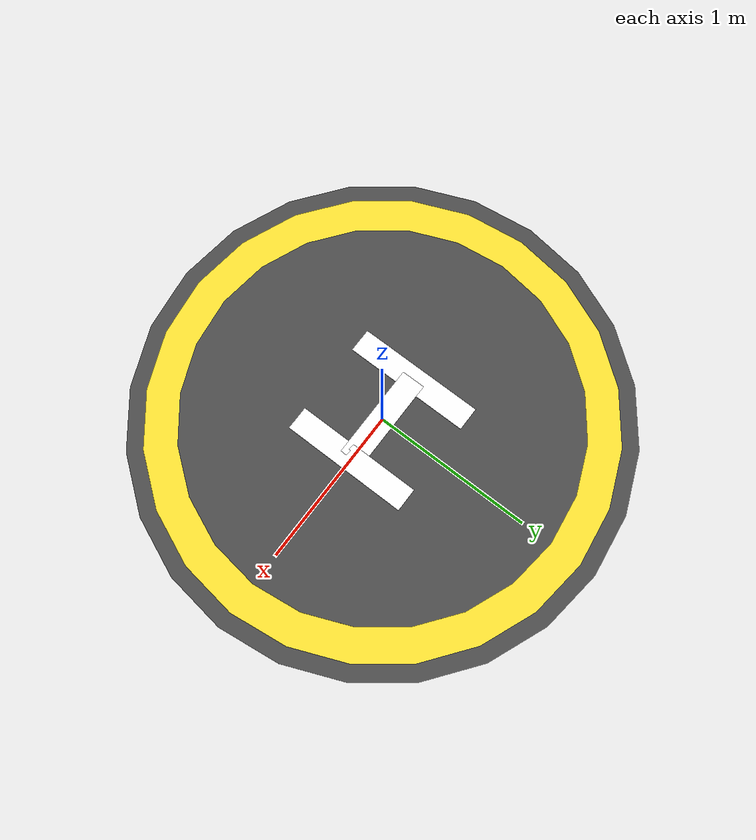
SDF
<?xml version="1.0"?>
<sdf version="1.6">
  <model name="landing_pad">
    <static>true</static>
    <link name="pad">
      <!-- Main circular pad -->
      <visual name="pad_base">
        <pose>0 0 0.005 0 0 0</pose>
        <geometry>
          <cylinder>
            <radius>1.5</radius>
            <length>0.01</length>
          </cylinder>
        </geometry>
        <material>
          <ambient>0.2 0.2 0.2 1</ambient>
          <diffuse>0.3 0.3 0.3 1</diffuse>
        </material>
      </visual>
      <!-- Outer ring -->
      <visual name="outer_ring">
        <pose>0 0 0.008 0 0 0</pose>
        <geometry>
          <cylinder>
            <radius>1.4</radius>
            <length>0.01</length>
          </cylinder>
        </geometry>
        <material>
          <ambient>1 0.8 0 1</ambient>
          <diffuse>1 0.9 0.2 1</diffuse>
        </material>
      </visual>
      <visual name="inner_circle">
        <pose>0 0 0.009 0 0 0</pose>
        <geometry>
          <cylinder>
            <radius>1.2</radius>
            <length>0.01</length>
          </cylinder>
        </geometry>
        <material>
          <ambient>0.2 0.2 0.2 1</ambient>
          <diffuse>0.3 0.3 0.3 1</diffuse>
        </material>
      </visual>
      <!-- H marking - vertical bars -->
      <visual name="h_left">
        <pose>-0.3 0 0.012 0 0 0</pose>
        <geometry>
          <box><size>0.15 0.8 0.01</size></box>
        </geometry>
        <material>
          <ambient>1 1 1 1</ambient>
          <diffuse>1 1 1 1</diffuse>
        </material>
      </visual>
      <visual name="h_right">
        <pose>0.3 0 0.012 0 0 0</pose>
        <geometry>
          <box><size>0.15 0.8 0.01</size></box>
        </geometry>
        <material>
          <ambient>1 1 1 1</ambient>
          <diffuse>1 1 1 1</diffuse>
        </material>
      </visual>
      <!-- H marking - horizontal bar -->
      <visual name="h_center">
        <pose>0 0 0.012 0 0 0</pose>
        <geometry>
          <box><size>0.6 0.15 0.01</size></box>
        </geometry>
        <material>
          <ambient>1 1 1 1</ambient>
          <diffuse>1 1 1 1</diffuse>
        </material>
      </visual>
    </link>
  </model>
</sdf>
